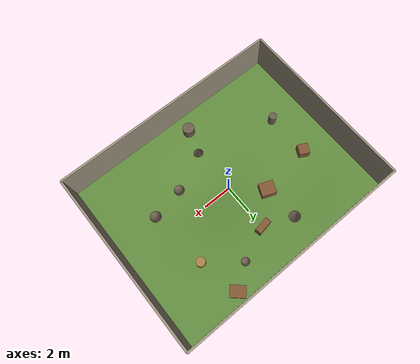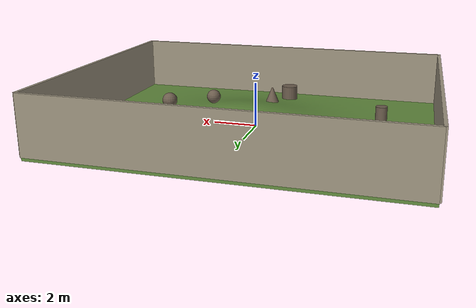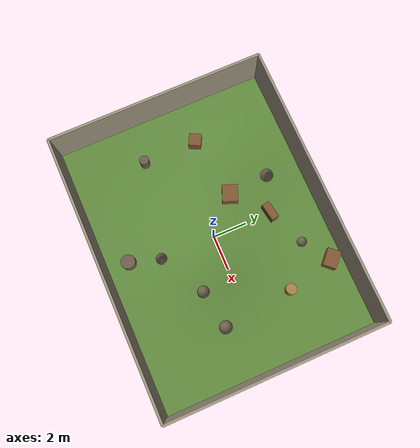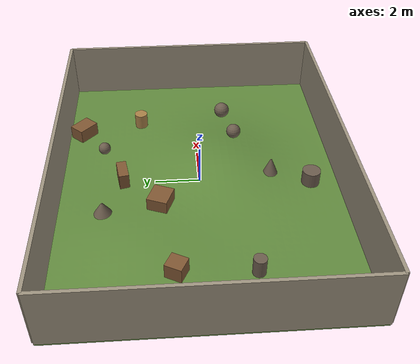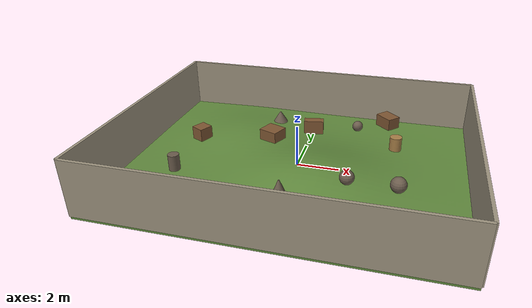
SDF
<?xml version='1.0' encoding='utf-8'?>
<sdf version="1.7">
  <world name="terrain_1">
    <gravity>0 0 -9.8</gravity>
    <plugin name="gazebo_ros_state" filename="libgazebo_ros_state.so">
      <ros>
        <namespace>/gazebo</namespace>
      </ros>
    </plugin>
    <physics name="ode_physics" type="ode">
      <max_step_size>0.001</max_step_size>
      <real_time_factor>1</real_time_factor>
      <real_time_update_rate>1000</real_time_update_rate>
      <ode>
        <solver>
          <type>quick</type>
          <iters>150</iters>
          <sor>1.3</sor>
        </solver>
        <constraints>
          <cfm>0</cfm>
          <erp>0.2</erp>
          <contact_max_correcting_vel>0.2</contact_max_correcting_vel>
          <contact_surface_layer>0.001</contact_surface_layer>
        </constraints>
      </ode>
    </physics>
    <light name="sun" type="directional">
      <pose>0 0 42 0 0 0</pose>
      <diffuse>0.92 0.91 0.88 1</diffuse>
      <specular>0.18 0.18 0.16 1</specular>
      <direction>-0.35 -0.28 -0.9</direction>
      <cast_shadows>true</cast_shadows>
    </light>
    <light name="fill" type="point">
      <pose>0 0 6 0 0 0</pose>
      <diffuse>0.35 0.36 0.34 1</diffuse>
      <specular>0.02 0.02 0.02 1</specular>
      <cast_shadows>false</cast_shadows>
      <attenuation>
        <range>80</range>
        <constant>0.5</constant>
        <linear>0.02</linear>
      </attenuation>
    </light>
    <scene>
      <ambient>0.52 0.56 0.48 1</ambient>
      <background>0.58 0.76 0.92 1</background>
    </scene>
    <gui fullscreen="false">
      <camera name="user_camera">
        <pose>11.2 -11.2 13.6 0 0.65 2.2</pose>
        <view_controller>orbit</view_controller>
      </camera>
    </gui>
    <model name="terrain_1_structure">
      <static>true</static>
      <link name="structure">
        <collision name="ground_surface_collision">
          <pose>0 0 0 0 0 0</pose>
          <geometry>
            <mesh>
              <uri>3DModel/terrain/surfaces/terrain_1_ground_surface.stl</uri>
            </mesh>
          </geometry>
          <max_contacts>40</max_contacts>
          <surface>
            <friction>
              <ode>
                <mu>8</mu>
                <mu2>8</mu2>
              </ode>
            </friction>
            <contact>
              <ode>
                <kp>1e7</kp>
                <kd>1000</kd>
                <max_vel>0.1</max_vel>
                <min_depth>0.001</min_depth>
              </ode>
            </contact>
          </surface>
        </collision>
        <visual name="ground_surface_visual">
          <pose>0 0 0 0 0 0</pose>
          <geometry>
            <mesh>
              <uri>3DModel/terrain/surfaces/terrain_1_ground_surface.stl</uri>
            </mesh>
          </geometry>
          <material>
            <ambient>0.38 0.54 0.24 1</ambient>
            <diffuse>0.38 0.54 0.24 1</diffuse>
          </material>
        </visual>
        <collision name="rock_box_0_collision">
          <pose>-1.77777778 1.77777778 0.604181885 0 0 -0.375825204</pose>
          <geometry>
            <box>
              <size>0.977777778 0.888888889 0.577777778</size>
            </box>
          </geometry>
          <max_contacts>40</max_contacts>
          <surface>
            <friction>
              <ode>
                <mu>2</mu>
                <mu2>2</mu2>
              </ode>
            </friction>
            <contact>
              <ode>
                <kp>1e7</kp>
                <kd>1000</kd>
                <max_vel>0.1</max_vel>
                <min_depth>0.001</min_depth>
              </ode>
            </contact>
          </surface>
        </collision>
        <visual name="rock_box_0_visual">
          <pose>-1.77777778 1.77777778 0.604181885 0 0 -0.375825204</pose>
          <geometry>
            <box>
              <size>0.977777778 0.888888889 0.577777778</size>
            </box>
          </geometry>
          <material>
            <ambient>0.50 0.34 0.20 1</ambient>
            <diffuse>0.50 0.34 0.20 1</diffuse>
          </material>
        </visual>
        <collision name="rock_round_1_collision">
          <pose>2.66666667 -1.77777778 0.751859913 0 0 0</pose>
          <geometry>
            <sphere>
              <radius>0.3377777777777778</radius>
            </sphere>
          </geometry>
          <max_contacts>40</max_contacts>
          <surface>
            <friction>
              <ode>
                <mu>2</mu>
                <mu2>2</mu2>
              </ode>
            </friction>
            <contact>
              <ode>
                <kp>1e7</kp>
                <kd>1000</kd>
                <max_vel>0.1</max_vel>
                <min_depth>0.001</min_depth>
              </ode>
            </contact>
          </surface>
        </collision>
        <visual name="rock_round_1_visual">
          <pose>2.66666667 -1.77777778 0.751859913 0 0 0</pose>
          <geometry>
            <sphere>
              <radius>0.3377777777777778</radius>
            </sphere>
          </geometry>
          <material>
            <ambient>0.42 0.36 0.30 1</ambient>
            <diffuse>0.42 0.36 0.30 1</diffuse>
          </material>
        </visual>
        <collision name="stone_column_2_collision">
          <pose>4.44444444 2.66666667 0.392340864 0 0 0</pose>
          <geometry>
            <cylinder>
              <radius>0.3022222222222222</radius>
              <length>0.7111111111111111</length>
            </cylinder>
          </geometry>
          <max_contacts>40</max_contacts>
          <surface>
            <friction>
              <ode>
                <mu>2</mu>
                <mu2>2</mu2>
              </ode>
            </friction>
            <contact>
              <ode>
                <kp>1e7</kp>
                <kd>1000</kd>
                <max_vel>0.1</max_vel>
                <min_depth>0.001</min_depth>
              </ode>
            </contact>
          </surface>
        </collision>
        <visual name="stone_column_2_visual">
          <pose>4.44444444 2.66666667 0.392340864 0 0 0</pose>
          <geometry>
            <cylinder>
              <radius>0.3022222222222222</radius>
              <length>0.7111111111111111</length>
            </cylinder>
          </geometry>
          <material>
            <ambient>0.66 0.50 0.28 1</ambient>
            <diffuse>0.66 0.50 0.28 1</diffuse>
          </material>
        </visual>
        <collision name="boundary_0_collision">
          <pose>0 -6.22222222 1.24444444 0 0 0</pose>
          <geometry>
            <box>
              <size>16 0.142222222 2.66666667</size>
            </box>
          </geometry>
          <max_contacts>40</max_contacts>
          <surface>
            <friction>
              <ode>
                <mu>2</mu>
                <mu2>2</mu2>
              </ode>
            </friction>
            <contact>
              <ode>
                <kp>1e7</kp>
                <kd>1000</kd>
                <max_vel>0.1</max_vel>
                <min_depth>0.001</min_depth>
              </ode>
            </contact>
          </surface>
        </collision>
        <visual name="boundary_0_visual">
          <pose>0 -6.22222222 1.24444444 0 0 0</pose>
          <geometry>
            <box>
              <size>16 0.142222222 2.66666667</size>
            </box>
          </geometry>
          <material>
            <ambient>0.62 0.58 0.50 1</ambient>
            <diffuse>0.62 0.58 0.50 1</diffuse>
          </material>
        </visual>
        <collision name="boundary_1_collision">
          <pose>8 0 1.24444444 0 0 1.57079633</pose>
          <geometry>
            <box>
              <size>12.4444444 0.142222222 2.66666667</size>
            </box>
          </geometry>
          <max_contacts>40</max_contacts>
          <surface>
            <friction>
              <ode>
                <mu>2</mu>
                <mu2>2</mu2>
              </ode>
            </friction>
            <contact>
              <ode>
                <kp>1e7</kp>
                <kd>1000</kd>
                <max_vel>0.1</max_vel>
                <min_depth>0.001</min_depth>
              </ode>
            </contact>
          </surface>
        </collision>
        <visual name="boundary_1_visual">
          <pose>8 0 1.24444444 0 0 1.57079633</pose>
          <geometry>
            <box>
              <size>12.4444444 0.142222222 2.66666667</size>
            </box>
          </geometry>
          <material>
            <ambient>0.62 0.58 0.50 1</ambient>
            <diffuse>0.62 0.58 0.50 1</diffuse>
          </material>
        </visual>
        <collision name="boundary_2_collision">
          <pose>0 6.22222222 1.24444444 0 0 3.14159265</pose>
          <geometry>
            <box>
              <size>16 0.142222222 2.66666667</size>
            </box>
          </geometry>
          <max_contacts>40</max_contacts>
          <surface>
            <friction>
              <ode>
                <mu>2</mu>
                <mu2>2</mu2>
              </ode>
            </friction>
            <contact>
              <ode>
                <kp>1e7</kp>
                <kd>1000</kd>
                <max_vel>0.1</max_vel>
                <min_depth>0.001</min_depth>
              </ode>
            </contact>
          </surface>
        </collision>
        <visual name="boundary_2_visual">
          <pose>0 6.22222222 1.24444444 0 0 3.14159265</pose>
          <geometry>
            <box>
              <size>16 0.142222222 2.66666667</size>
            </box>
          </geometry>
          <material>
            <ambient>0.62 0.58 0.50 1</ambient>
            <diffuse>0.62 0.58 0.50 1</diffuse>
          </material>
        </visual>
        <collision name="boundary_3_collision">
          <pose>-8 0 1.24444444 0 0 -1.57079633</pose>
          <geometry>
            <box>
              <size>12.4444444 0.142222222 2.66666667</size>
            </box>
          </geometry>
          <max_contacts>40</max_contacts>
          <surface>
            <friction>
              <ode>
                <mu>2</mu>
                <mu2>2</mu2>
              </ode>
            </friction>
            <contact>
              <ode>
                <kp>1e7</kp>
                <kd>1000</kd>
                <max_vel>0.1</max_vel>
                <min_depth>0.001</min_depth>
              </ode>
            </contact>
          </surface>
        </collision>
        <visual name="boundary_3_visual">
          <pose>-8 0 1.24444444 0 0 -1.57079633</pose>
          <geometry>
            <box>
              <size>12.4444444 0.142222222 2.66666667</size>
            </box>
          </geometry>
          <material>
            <ambient>0.62 0.58 0.50 1</ambient>
            <diffuse>0.62 0.58 0.50 1</diffuse>
          </material>
        </visual>
        <collision name="irregular_prop_0_collision">
          <pose>3.81237374 5.4601515 0.31750031 0 0 2.39301664</pose>
          <geometry>
            <box>
              <size>1.01710822 0.757609388 0.631464484</size>
            </box>
          </geometry>
          <max_contacts>40</max_contacts>
          <surface>
            <friction>
              <ode>
                <mu>2</mu>
                <mu2>2</mu2>
              </ode>
            </friction>
            <contact>
              <ode>
                <kp>1e7</kp>
                <kd>1000</kd>
                <max_vel>0.1</max_vel>
                <min_depth>0.001</min_depth>
              </ode>
            </contact>
          </surface>
        </collision>
        <visual name="irregular_prop_0_visual">
          <pose>3.81237374 5.4601515 0.31750031 0 0 2.39301664</pose>
          <geometry>
            <box>
              <size>1.01710822 0.757609388 0.631464484</size>
            </box>
          </geometry>
          <material>
            <ambient>0.50 0.34 0.20 1</ambient>
            <diffuse>0.50 0.34 0.20 1</diffuse>
          </material>
        </visual>
        <collision name="irregular_prop_1_collision">
          <pose>-0.507817886 -4.90850581 0.411391648 0 0 1.1875905</pose>
          <geometry>
            <cylinder>
              <radius>0.39973924079405215</radius>
              <length>0.6894804175755029</length>
            </cylinder>
          </geometry>
          <max_contacts>40</max_contacts>
          <surface>
            <friction>
              <ode>
                <mu>2</mu>
                <mu2>2</mu2>
              </ode>
            </friction>
            <contact>
              <ode>
                <kp>1e7</kp>
                <kd>1000</kd>
                <max_vel>0.1</max_vel>
                <min_depth>0.001</min_depth>
              </ode>
            </contact>
          </surface>
        </collision>
        <visual name="irregular_prop_1_visual">
          <pose>-0.507817886 -4.90850581 0.411391648 0 0 1.1875905</pose>
          <geometry>
            <cylinder>
              <radius>0.39973924079405215</radius>
              <length>0.6894804175755029</length>
            </cylinder>
          </geometry>
          <material>
            <ambient>0.42 0.36 0.30 1</ambient>
            <diffuse>0.42 0.36 0.30 1</diffuse>
          </material>
        </visual>
        <collision name="irregular_prop_2_collision">
          <pose>4.88076137 -1.42421675 0.498012508 0 0 2.97800555</pose>
          <geometry>
            <sphere>
              <radius>0.3708208700113309</radius>
            </sphere>
          </geometry>
          <max_contacts>40</max_contacts>
          <surface>
            <friction>
              <ode>
                <mu>2</mu>
                <mu2>2</mu2>
              </ode>
            </friction>
            <contact>
              <ode>
                <kp>1e7</kp>
                <kd>1000</kd>
                <max_vel>0.1</max_vel>
                <min_depth>0.001</min_depth>
              </ode>
            </contact>
          </surface>
        </collision>
        <visual name="irregular_prop_2_visual">
          <pose>4.88076137 -1.42421675 0.498012508 0 0 2.97800555</pose>
          <geometry>
            <sphere>
              <radius>0.3708208700113309</radius>
            </sphere>
          </geometry>
          <material>
            <ambient>0.42 0.36 0.30 1</ambient>
            <diffuse>0.42 0.36 0.30 1</diffuse>
          </material>
        </visual>
        <collision name="irregular_prop_3_collision">
          <pose>0 0 0 0 0 0</pose>
          <geometry>
            <mesh>
              <uri>3DModel/terrain/surfaces/terrain_1_irregular_prop_3.stl</uri>
            </mesh>
          </geometry>
          <max_contacts>40</max_contacts>
          <surface>
            <friction>
              <ode>
                <mu>8</mu>
                <mu2>8</mu2>
              </ode>
            </friction>
            <contact>
              <ode>
                <kp>1e7</kp>
                <kd>1000</kd>
                <max_vel>0.1</max_vel>
                <min_depth>0.001</min_depth>
              </ode>
            </contact>
          </surface>
        </collision>
        <visual name="irregular_prop_3_visual">
          <pose>0 0 0 0 0 0</pose>
          <geometry>
            <mesh>
              <uri>3DModel/terrain/surfaces/terrain_1_irregular_prop_3.stl</uri>
            </mesh>
          </geometry>
          <material>
            <ambient>0.42 0.36 0.30 1</ambient>
            <diffuse>0.42 0.36 0.30 1</diffuse>
          </material>
        </visual>
        <collision name="irregular_prop_4_collision">
          <pose>-5.47682275 1.23756972 0.490736864 0 0 1.09229881</pose>
          <geometry>
            <box>
              <size>0.719474335 0.695352911 0.666727682</size>
            </box>
          </geometry>
          <max_contacts>40</max_contacts>
          <surface>
            <friction>
              <ode>
                <mu>2</mu>
                <mu2>2</mu2>
              </ode>
            </friction>
            <contact>
              <ode>
                <kp>1e7</kp>
                <kd>1000</kd>
                <max_vel>0.1</max_vel>
                <min_depth>0.001</min_depth>
              </ode>
            </contact>
          </surface>
        </collision>
        <visual name="irregular_prop_4_visual">
          <pose>-5.47682275 1.23756972 0.490736864 0 0 1.09229881</pose>
          <geometry>
            <box>
              <size>0.719474335 0.695352911 0.666727682</size>
            </box>
          </geometry>
          <material>
            <ambient>0.50 0.34 0.20 1</ambient>
            <diffuse>0.50 0.34 0.20 1</diffuse>
          </material>
        </visual>
        <collision name="irregular_prop_5_collision">
          <pose>-5.51527241 -1.89133016 0.4207157 0 0 -1.00107454</pose>
          <geometry>
            <cylinder>
              <radius>0.2697114576940233</radius>
              <length>0.7936160976139176</length>
            </cylinder>
          </geometry>
          <max_contacts>40</max_contacts>
          <surface>
            <friction>
              <ode>
                <mu>2</mu>
                <mu2>2</mu2>
              </ode>
            </friction>
            <contact>
              <ode>
                <kp>1e7</kp>
                <kd>1000</kd>
                <max_vel>0.1</max_vel>
                <min_depth>0.001</min_depth>
              </ode>
            </contact>
          </surface>
        </collision>
        <visual name="irregular_prop_5_visual">
          <pose>-5.51527241 -1.89133016 0.4207157 0 0 -1.00107454</pose>
          <geometry>
            <cylinder>
              <radius>0.2697114576940233</radius>
              <length>0.7936160976139176</length>
            </cylinder>
          </geometry>
          <material>
            <ambient>0.42 0.36 0.30 1</ambient>
            <diffuse>0.42 0.36 0.30 1</diffuse>
          </material>
        </visual>
        <collision name="irregular_prop_6_collision">
          <pose>2.282746 4.38637051 0.299816505 0 0 -3.10451436</pose>
          <geometry>
            <sphere>
              <radius>0.28174088858357804</radius>
            </sphere>
          </geometry>
          <max_contacts>40</max_contacts>
          <surface>
            <friction>
              <ode>
                <mu>2</mu>
                <mu2>2</mu2>
              </ode>
            </friction>
            <contact>
              <ode>
                <kp>1e7</kp>
                <kd>1000</kd>
                <max_vel>0.1</max_vel>
                <min_depth>0.001</min_depth>
              </ode>
            </contact>
          </surface>
        </collision>
        <visual name="irregular_prop_6_visual">
          <pose>2.282746 4.38637051 0.299816505 0 0 -3.10451436</pose>
          <geometry>
            <sphere>
              <radius>0.28174088858357804</radius>
            </sphere>
          </geometry>
          <material>
            <ambient>0.42 0.36 0.30 1</ambient>
            <diffuse>0.42 0.36 0.30 1</diffuse>
          </material>
        </visual>
        <collision name="irregular_prop_7_collision">
          <pose>0 0 0 0 0 0</pose>
          <geometry>
            <mesh>
              <uri>3DModel/terrain/surfaces/terrain_1_irregular_prop_7.stl</uri>
            </mesh>
          </geometry>
          <max_contacts>40</max_contacts>
          <surface>
            <friction>
              <ode>
                <mu>8</mu>
                <mu2>8</mu2>
              </ode>
            </friction>
            <contact>
              <ode>
                <kp>1e7</kp>
                <kd>1000</kd>
                <max_vel>0.1</max_vel>
                <min_depth>0.001</min_depth>
              </ode>
            </contact>
          </surface>
        </collision>
        <visual name="irregular_prop_7_visual">
          <pose>0 0 0 0 0 0</pose>
          <geometry>
            <mesh>
              <uri>3DModel/terrain/surfaces/terrain_1_irregular_prop_7.stl</uri>
            </mesh>
          </geometry>
          <material>
            <ambient>0.42 0.36 0.30 1</ambient>
            <diffuse>0.42 0.36 0.30 1</diffuse>
          </material>
        </visual>
        <collision name="irregular_prop_8_collision">
          <pose>0.0336690599 3.43039551 0.478964832 0 0 0.171149834</pose>
          <geometry>
            <box>
              <size>1.0182585 0.439790015 0.735447824</size>
            </box>
          </geometry>
          <max_contacts>40</max_contacts>
          <surface>
            <friction>
              <ode>
                <mu>2</mu>
                <mu2>2</mu2>
              </ode>
            </friction>
            <contact>
              <ode>
                <kp>1e7</kp>
                <kd>1000</kd>
                <max_vel>0.1</max_vel>
                <min_depth>0.001</min_depth>
              </ode>
            </contact>
          </surface>
        </collision>
        <visual name="irregular_prop_8_visual">
          <pose>0.0336690599 3.43039551 0.478964832 0 0 0.171149834</pose>
          <geometry>
            <box>
              <size>1.0182585 0.439790015 0.735447824</size>
            </box>
          </geometry>
          <material>
            <ambient>0.50 0.34 0.20 1</ambient>
            <diffuse>0.50 0.34 0.20 1</diffuse>
          </material>
        </visual>
      </link>
    </model>
  </world>
</sdf>
